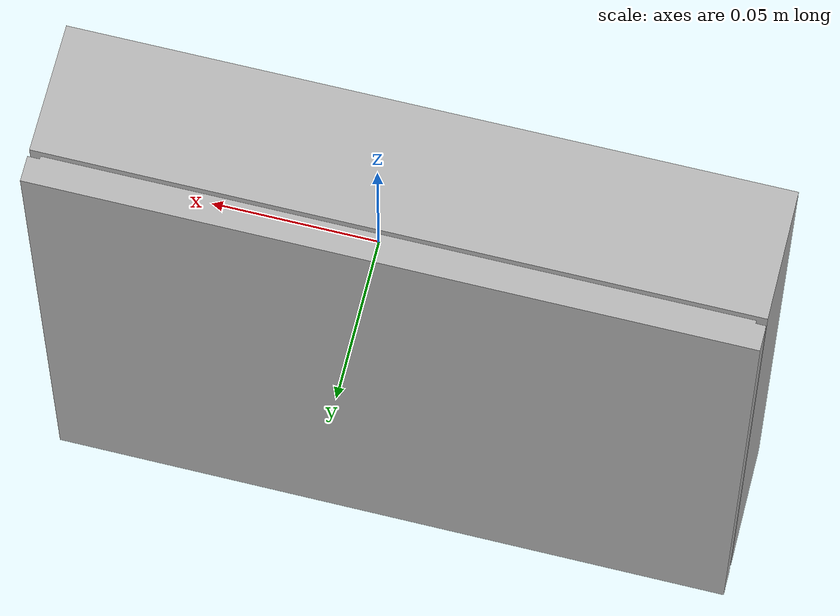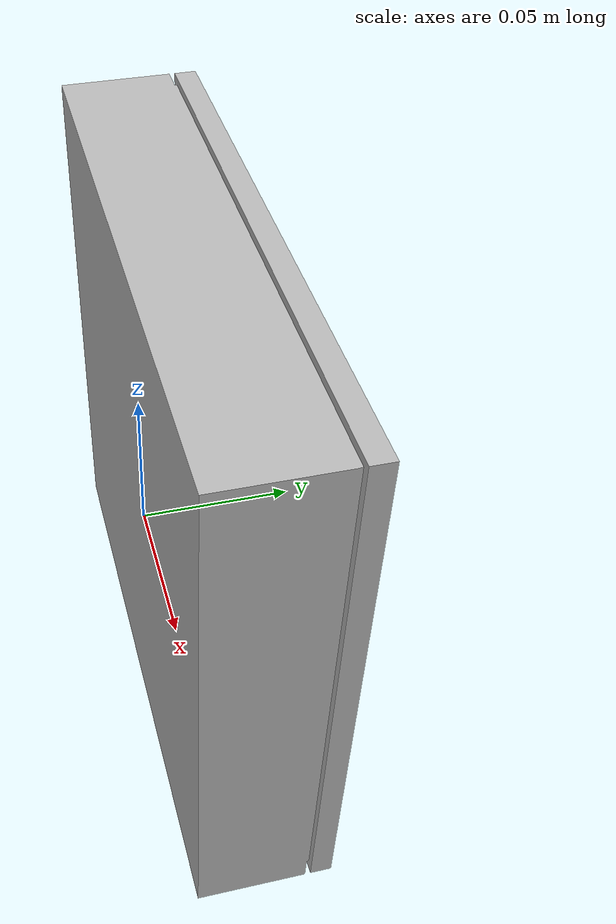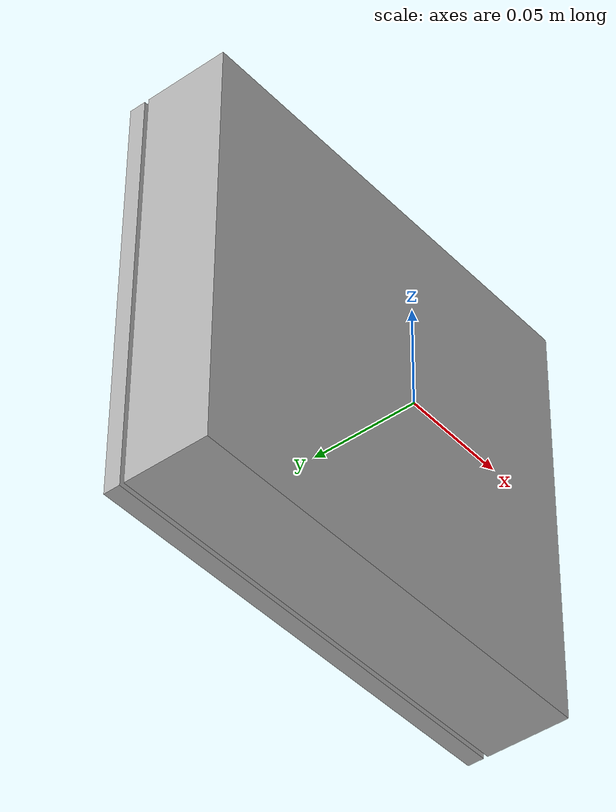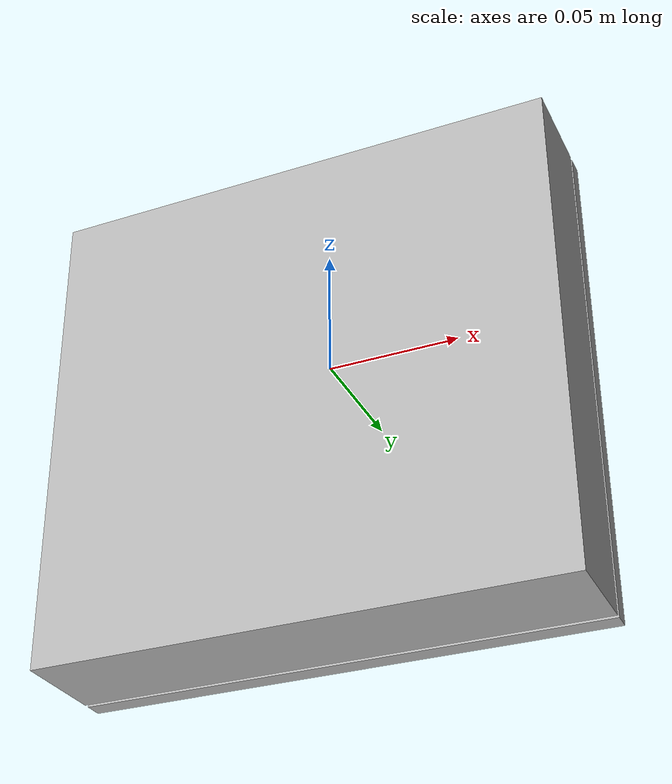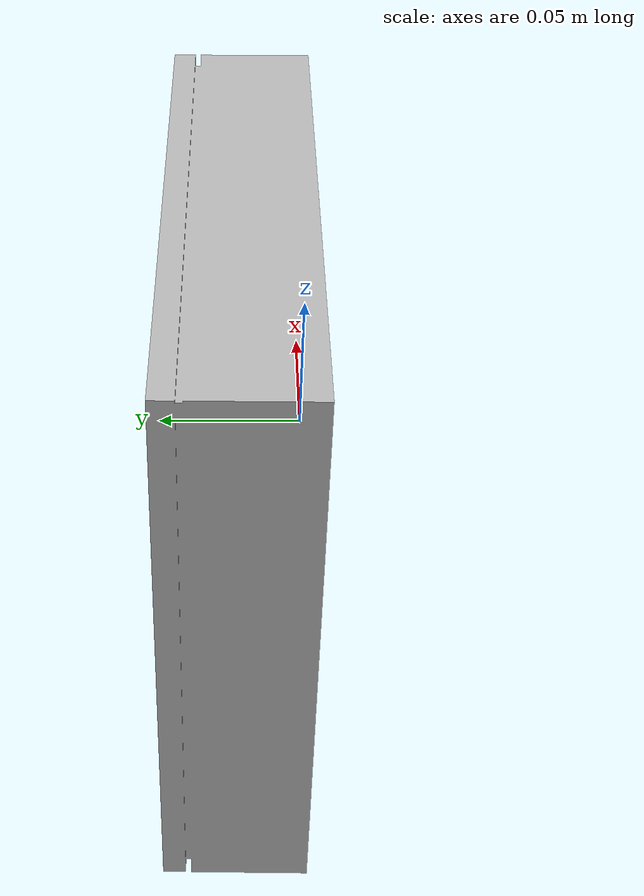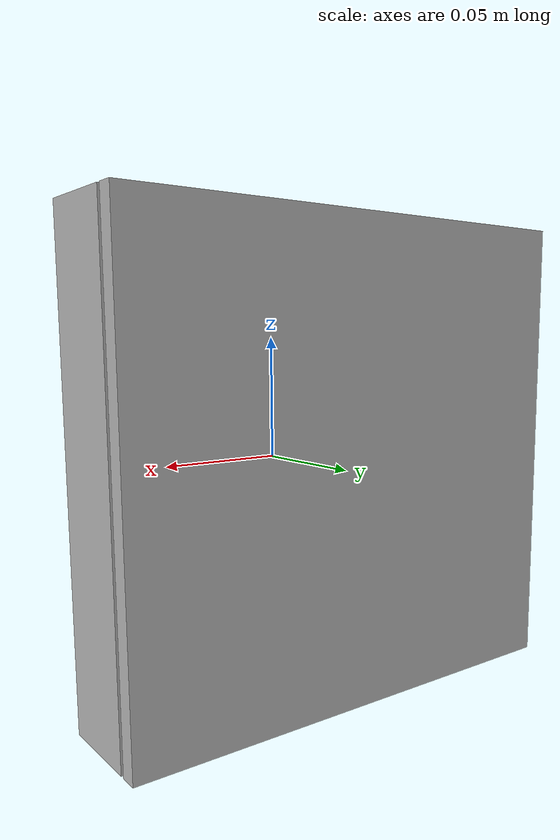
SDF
<?xml version="1.0" ?>
<sdf version="1.4">
  <model name="shelf1_box1_4">
    <link name="body">
      <pose>0 0 0 0 0 0</pose>
      <inertial>
        <pose>  -0.014587   0.022451  -0.001000 0 0 0</pose>
        <mass>0.5</mass>
        <inertia>
          <ixx>0.01</ixx>
          <ixy>0</ixy>
          <ixz>0</ixz>
          <iyy>0.01</iyy>
          <iyz>0</iyz>
          <izz>0.01</izz>
        </inertia>
      </inertial>
      <collision name="collision">
        <geometry>
          <mesh>
            <uri>model://bookshelf/shelf1_items/box1_4/box1_4.dae</uri>
          </mesh>
        </geometry>
      </collision>
      <visual name="visual">
        <geometry>
          <mesh>
            <uri>model://bookshelf/shelf1_items/box1_4/box1_4.dae</uri>
          </mesh>
        </geometry>
      </visual>
    </link>
  </model>
</sdf>
